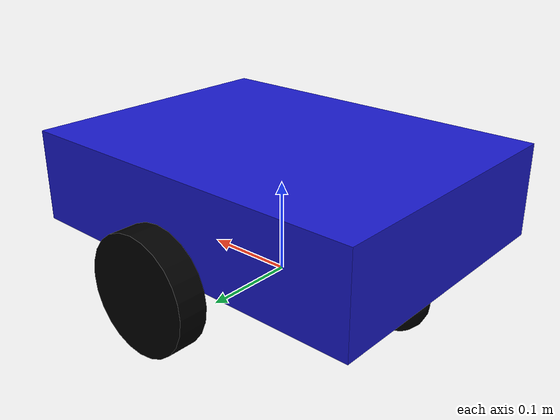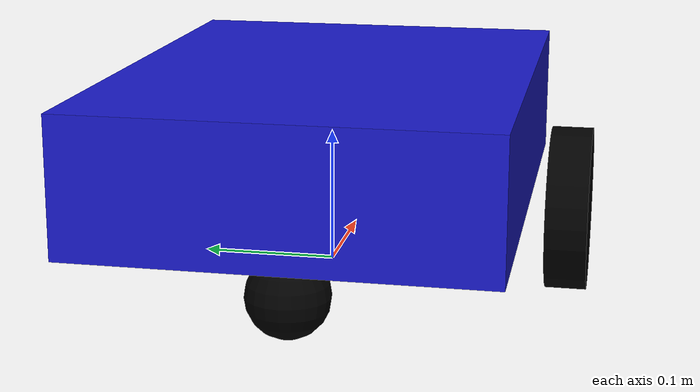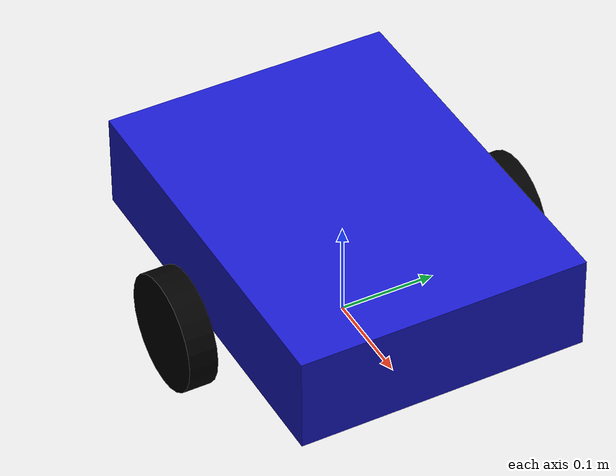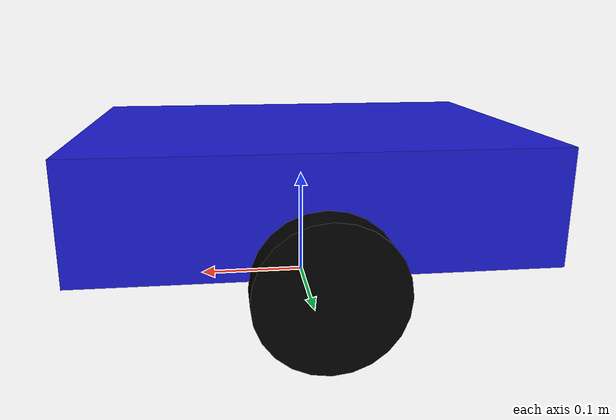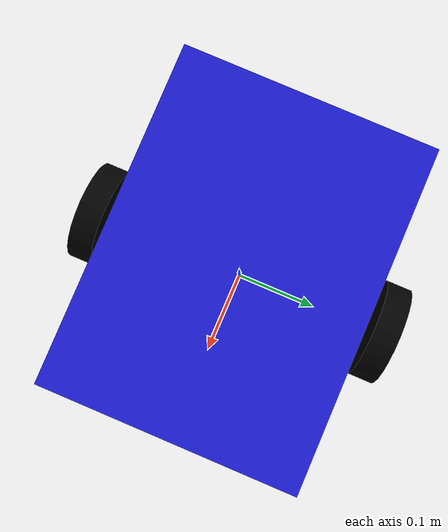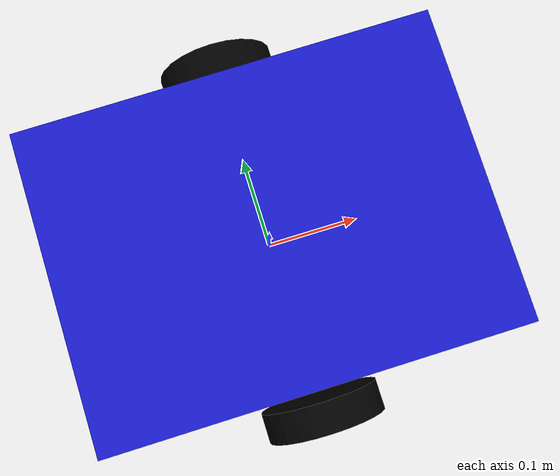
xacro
<?xml version="1.0"?>
<robot name="mobile_robot" xmlns:xacro="http://www.ros.org/wiki/xacro">

  <!-- Materials -->
  <material name="blue">
    <color rgba="0.1 0.1 0.8 1"/>
  </material>

  <material name="black">
    <color rgba="0 0 0 1"/>
  </material>

  <!-- Base -->
  <link name="base_link"/>

  <!-- Chassis -->
  <link name="chassis">
    <visual>
      <origin xyz="0 0 0.1"/> <!-- raise slightly above grid -->
      <geometry>
        <box size="0.4 0.3 0.1"/>
      </geometry>
      <material name="blue"/>
    </visual>
  </link>

  <joint name="base_to_chassis" type="fixed">
    <parent link="base_link"/>
    <child link="chassis"/>
  </joint>

  <!-- Left wheel -->
  <link name="left_wheel">
    <visual>
      <origin xyz="0 0 0" rpy="1.5708 0 0"/>
      <geometry>
        <cylinder radius="0.06" length="0.03"/>
      </geometry>
      <material name="black"/>
    </visual>
  </link>

  <joint name="left_wheel_joint" type="continuous">
    <parent link="chassis"/>
    <child link="left_wheel"/>
    <origin xyz="0 0.18 0.05"/>
    <axis xyz="0 1 0"/>
  </joint>

  <!-- Right wheel -->
  <link name="right_wheel">
    <visual>
      <origin xyz="0 0 0" rpy="1.5708 0 0"/>
      <geometry>
        <cylinder radius="0.06" length="0.03"/>
      </geometry>
      <material name="black"/>
    </visual>
  </link>

  <joint name="right_wheel_joint" type="continuous">
    <parent link="chassis"/>
    <child link="right_wheel"/>
    <origin xyz="0 -0.18 0.05"/>
    <axis xyz="0 1 0"/>
  </joint>

  <!-- Caster wheel -->
  <link name="caster_wheel">
    <visual>
      <origin xyz="0 0 0"/>
      <geometry>
        <sphere radius="0.03"/>
      </geometry>
      <material name="black"/>
    </visual>
  </link>

  <joint name="caster_joint" type="fixed">
    <parent link="chassis"/>
    <child link="caster_wheel"/>
    <origin xyz="-0.15 0 0.02"/>
  </joint>

</robot>
